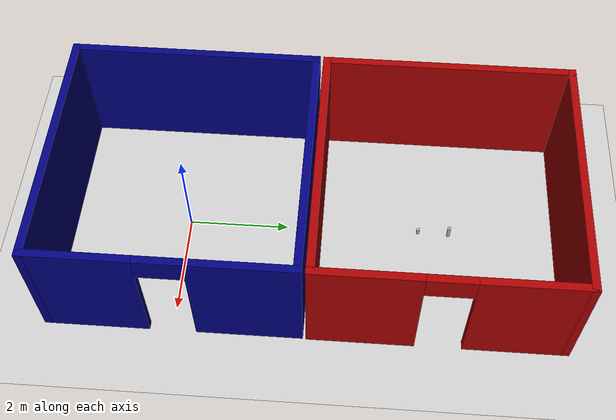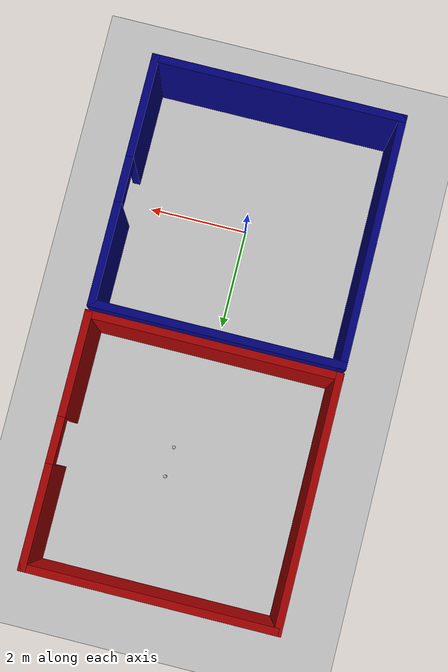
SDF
<sdf version="1.6">
 <world name="default">
  <model name="ground_plane">
   <static>1</static>
   <link name="link">
    <collision name="collision">
     <geometry><plane><normal>0 0 1</normal><size>100 100</size></plane></geometry>
     <surface>
      <contact><collide_bitmask>65535</collide_bitmask></contact>
      <friction><ode><mu>100</mu><mu2>50</mu2></ode></friction>
     </surface>
    </collision>
    <visual name="visual">
     <cast_shadows>0</cast_shadows>
     <geometry><plane><normal>0 0 1</normal><size>100 100</size></plane></geometry>
     <material>
      <script><uri>file://media/materials/scripts/gazebo.material</uri><name>Gazebo/Grey</name></script>
     </material>
    </visual>
   </link>
  </model>
  <light name="sun" type="directional">
   <pose>0 0 10 0 -0 0</pose>
   <diffuse>0.8 0.8 0.8 1</diffuse>
   <specular>0.2 0.2 0.2 1</specular>
   <attenuation>
    <range>1000</range>
    <constant>0.9</constant>
    <linear>0.01</linear>
    <quadratic>0.001</quadratic>
   </attenuation>
   <direction>-0.5 0.1 -0.9</direction>
  </light>
  <gravity>0 0 -9.8</gravity>
  <magnetic_field>6e-06 2.3e-05 -4.2e-05</magnetic_field>
  <atmosphere type="adiabatic"/>
  <physics name="default_physics" default="0" type="ode">
   <max_step_size>0.005</max_step_size>
   <real_time_update_rate>0</real_time_update_rate>
  </physics>
  <scene><ambient>0.4 0.4 0.4 1</ambient><background>0.7 0.7 0.7 1</background><shadows>1</shadows></scene>
  <spherical_coordinates>
   <surface_model>EARTH_WGS84</surface_model>
   <latitude_deg>0</latitude_deg>
   <longitude_deg>0</longitude_deg>
   <elevation>0</elevation>
   <heading_deg>0</heading_deg>
  </spherical_coordinates>
  <model name="blue_5m_room">
   <link name="Wall_0">
    <collision name="Wall_0_Collision">
     <geometry><box><size>5 0.15 2.5</size></box></geometry>
     <pose>0 0 1.25 0 -0 0</pose>
    </collision>
    <visual name="Wall_0_Visual">
     <pose>0 0 1.25 0 -0 0</pose>
     <geometry><box><size>5 0.15 2.5</size></box></geometry>
     <material>
      <script><uri>file://media/materials/scripts/gazebo.material</uri><name>Gazebo/Grey</name></script>
      <ambient>0 0 0.498039 1</ambient>
     </material>
     <meta><layer>0</layer></meta>
    </visual>
    <pose>-2.425 0 0 0 -0 1.5708</pose>
   </link>
   <link name="Wall_1">
    <collision name="Wall_1_Collision">
     <geometry><box><size>5 0.15 2.5</size></box></geometry>
     <pose>0 0 1.25 0 -0 0</pose>
    </collision>
    <visual name="Wall_1_Visual">
     <pose>0 0 1.25 0 -0 0</pose>
     <geometry><box><size>5 0.15 2.5</size></box></geometry>
     <material>
      <script><uri>file://media/materials/scripts/gazebo.material</uri><name>Gazebo/Grey</name></script>
      <ambient>0 0 0.498039 1</ambient>
     </material>
     <meta><layer>0</layer></meta>
    </visual>
    <pose>0 2.425 0 0 -0 0</pose>
   </link>
   <link name="Wall_2">
    <pose>2.425 0 0 0 0 -1.5708</pose>
    <visual name="Wall_2_Visual_0">
     <pose>-1.47363 0 1.25 0 -0 0</pose>
     <geometry><box><size>2.05274 0.15 2.5</size></box></geometry>
     <material>
      <script><uri>file://media/materials/scripts/gazebo.material</uri><name>Gazebo/Grey</name></script>
      <ambient>0 0 0.498039 1</ambient>
     </material>
     <meta><layer>0</layer></meta>
    </visual>
    <collision name="Wall_2_Collision_0">
     <geometry><box><size>2.05274 0.15 2.5</size></box></geometry>
     <pose>-1.47363 0 1.25 0 -0 0</pose>
    </collision>
    <visual name="Wall_2_Visual_1">
     <pose>1.47637 0 1.25 0 -0 0</pose>
     <geometry><box><size>2.04726 0.15 2.5</size></box></geometry>
     <material>
      <script><uri>file://media/materials/scripts/gazebo.material</uri><name>Gazebo/Grey</name></script>
      <ambient>0 0 0.498039 1</ambient>
     </material>
     <meta><layer>0</layer></meta>
    </visual>
    <collision name="Wall_2_Collision_1">
     <geometry><box><size>2.04726 0.15 2.5</size></box></geometry>
     <pose>1.47637 0 1.25 0 -0 0</pose>
    </collision>
    <visual name="Wall_2_Visual_2">
     <pose>0.00274 0 2.25 0 -0 0</pose>
     <geometry><box><size>0.9 0.15 0.5</size></box></geometry>
     <material>
      <script><uri>file://media/materials/scripts/gazebo.material</uri><name>Gazebo/Grey</name></script>
      <ambient>0 0 0.498039 1</ambient>
     </material>
     <meta><layer>0</layer></meta>
    </visual>
    <collision name="Wall_2_Collision_2">
     <geometry><box><size>0.9 0.15 0.5</size></box></geometry>
     <pose>0.00274 0 2.25 0 -0 0</pose>
    </collision>
   </link>
   <link name="Wall_3">
    <collision name="Wall_3_Collision">
     <geometry><box><size>5 0.15 2.5</size></box></geometry>
     <pose>0 0 1.25 0 -0 0</pose>
    </collision>
    <visual name="Wall_3_Visual">
     <pose>0 0 1.25 0 -0 0</pose>
     <geometry><box><size>5 0.15 2.5</size></box></geometry>
     <material>
      <script><uri>file://media/materials/scripts/gazebo.material</uri><name>Gazebo/Grey</name></script>
      <ambient>0 0 0.498039 1</ambient>
     </material>
     <meta><layer>0</layer></meta>
    </visual>
    <pose>0 -2.425 0 0 -0 3.14159</pose>
   </link>
   <static>1</static>
  </model>
  <model name="red_5m_room">
   <pose>0.009312 5.0624 0 0 -0 0</pose>
   <link name="Wall_5">
    <collision name="Wall_5_Collision">
     <geometry><box><size>5 0.15 2.5</size></box></geometry>
     <pose>0 0 1.25 0 -0 0</pose>
    </collision>
    <visual name="Wall_5_Visual">
     <pose>0 0 1.25 0 -0 0</pose>
     <geometry><box><size>5 0.15 2.5</size></box></geometry>
     <material>
      <script><uri>file://media/materials/scripts/gazebo.material</uri><name>Gazebo/Grey</name></script>
      <ambient>0.666667 0 0 1</ambient>
     </material>
     <meta><layer>0</layer></meta>
    </visual>
    <pose>-2.425 0 0 0 0 -1.5708</pose>
   </link>
   <link name="Wall_6">
    <collision name="Wall_6_Collision">
     <geometry><box><size>5 0.15 2.5</size></box></geometry>
     <pose>0 0 1.25 0 -0 0</pose>
    </collision>
    <visual name="Wall_6_Visual">
     <pose>0 0 1.25 0 -0 0</pose>
     <geometry><box><size>5 0.15 2.5</size></box></geometry>
     <material>
      <script><uri>file://media/materials/scripts/gazebo.material</uri><name>Gazebo/Grey</name></script>
      <ambient>0.666667 0 0 1</ambient>
     </material>
     <meta><layer>0</layer></meta>
    </visual>
    <pose>0 -2.425 0 0 -0 0</pose>
   </link>
   <link name="Wall_7">
    <pose>2.425 0 0 0 -0 1.5708</pose>
    <visual name="Wall_7_Visual_0">
     <pose>-1.46931 0 1.25 0 -0 0</pose>
     <geometry><box><size>2.06137 0.15 2.5</size></box></geometry>
     <material>
      <script><uri>file://media/materials/scripts/gazebo.material</uri><name>Gazebo/Grey</name></script>
      <ambient>0.666667 0 0 1</ambient>
     </material>
     <meta><layer>0</layer></meta>
    </visual>
    <collision name="Wall_7_Collision_0">
     <geometry><box><size>2.06137 0.15 2.5</size></box></geometry>
     <pose>-1.46931 0 1.25 0 -0 0</pose>
    </collision>
    <visual name="Wall_7_Visual_1">
     <pose>1.48069 0 1.25 0 -0 0</pose>
     <geometry><box><size>2.03863 0.15 2.5</size></box></geometry>
     <material>
      <script><uri>file://media/materials/scripts/gazebo.material</uri><name>Gazebo/Grey</name></script>
      <ambient>0.666667 0 0 1</ambient>
     </material>
     <meta><layer>0</layer></meta>
    </visual>
    <collision name="Wall_7_Collision_1">
     <geometry><box><size>2.03863 0.15 2.5</size></box></geometry>
     <pose>1.48069 0 1.25 0 -0 0</pose>
    </collision>
    <visual name="Wall_7_Visual_2">
     <pose>0.011371 0 2.25 0 -0 0</pose>
     <geometry><box><size>0.9 0.15 0.5</size></box></geometry>
     <material>
      <script><uri>file://media/materials/scripts/gazebo.material</uri><name>Gazebo/Grey</name></script>
      <ambient>0.666667 0 0 1</ambient>
     </material>
     <meta><layer>0</layer></meta>
    </visual>
    <collision name="Wall_7_Collision_2">
     <geometry><box><size>0.9 0.15 0.5</size></box></geometry>
     <pose>0.011371 0 2.25 0 -0 0</pose>
    </collision>
   </link>
   <link name="Wall_8">
    <collision name="Wall_8_Collision">
     <geometry><box><size>5 0.15 2.5</size></box></geometry>
     <pose>0 0 1.25 0 -0 0</pose>
    </collision>
    <visual name="Wall_8_Visual">
     <pose>0 0 1.25 0 -0 0</pose>
     <geometry><box><size>5 0.15 2.5</size></box></geometry>
     <material>
      <script><uri>file://media/materials/scripts/gazebo.material</uri><name>Gazebo/Grey</name></script>
      <ambient>0.666667 0 0 1</ambient>
     </material>
     <meta><layer>0</layer></meta>
    </visual>
    <pose>0 2.425 0 0 -0 3.14159</pose>
   </link>
   <static>1</static>
  </model>
  <model name="cafe_beer">
   <static>0</static>
   <link name="link">
    <pose>0 0 0.061341 0 -0 0</pose>
    <inertial>
     <mass>0.2</mass>
     <inertia>
      <ixx>0.000305</ixx>
      <ixy>0</ixy>
      <ixz>0</ixz>
      <iyy>0.000305</iyy>
      <iyz>0</iyz>
      <izz>0.000109</izz>
     </inertia>
    </inertial>
    <collision name="collision">
     <geometry><cylinder><radius>0.03302</radius><length>0.122682</length></cylinder></geometry>
     <surface>
      <friction><ode><mu>0.8</mu><mu2>0.8</mu2></ode></friction>
      <contact><ode><kp>1e+06</kp><kd>1</kd><max_vel>0</max_vel><min_depth>0.0001</min_depth></ode></contact>
     </surface>
    </collision>
    <visual name="visual">
     <geometry><cylinder><radius>0.03302</radius><length>0.122682</length></cylinder></geometry>
     <material>
      <script>
       <uri>model://beer/materials/scripts</uri>
       <uri>model://beer/materials/textures</uri>
       <name>Beer/Diffuse</name>
      </script>
     </material>
    </visual>
   </link>
   <pose>0.326114 4.62878 0.598797 -0.000236 -0.00019 0</pose>
  </model>
  <model name="pringles">
   <static>0</static>
   <link name="link">
    <pose>0 0 0.13335 0 -0 0</pose>
    <inertial>
     <mass>0.2</mass>
     <inertia>
      <ixx>0.001258</ixx>
      <ixy>0</ixy>
      <ixz>0</ixz>
      <iyy>0.001258</iyy>
      <iyz>0</iyz>
      <izz>0.000145</izz>
     </inertia>
    </inertial>
    <collision name="collision">
     <geometry><cylinder><radius>0.03302</radius><length>0.2667</length></cylinder></geometry>
     <surface>
      <friction><ode><mu>0.8</mu><mu2>0.8</mu2><fdir1>0 0 0</fdir1><slip1>0</slip1><slip2>0</slip2></ode></friction>
      <contact><ode><kp>1e+06</kp><kd>1</kd><max_vel>0</max_vel><min_depth>0.0001</min_depth></ode></contact>
     </surface>
    </collision>
    <visual name="visual">
     <geometry><cylinder><radius>0.03302</radius><length>0.2667</length></cylinder></geometry>
     <material>
      <script>
       <uri>model://pringles/materials/scripts</uri>
       <uri>model://pringles/materials/textures</uri>
       <name>pringles/Diffuse</name>
      </script>
     </material>
    </visual>
   </link>
   <pose>0.350042 5.22595 0.598789 4.2e-05 3.3e-05 0</pose>
  </model>
 </world>
</sdf>
